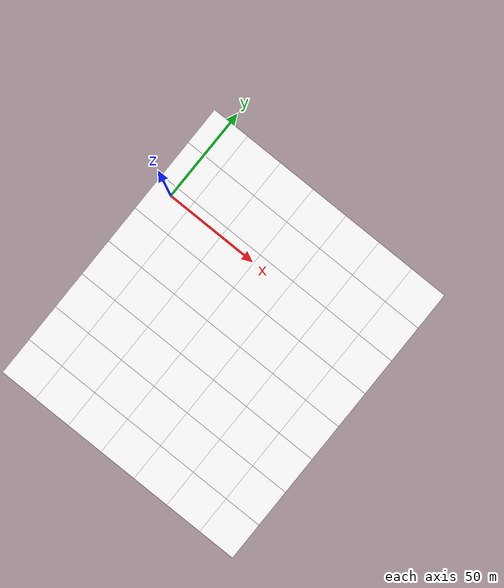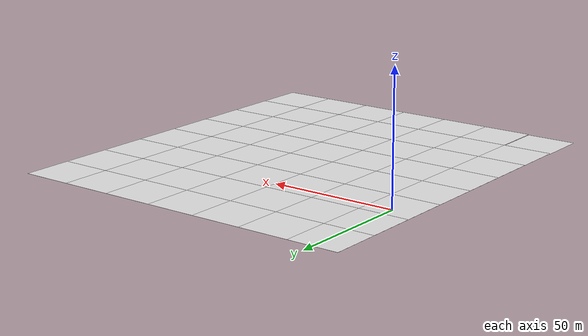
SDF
<sdf version="1.9">
 <world name="map">
  <physics type="ode">
   <ode>
    <solver>
     <type>quick</type>
     <iters>200</iters>
     <sor>1.3</sor>
     <use_dynamic_moi_rescaling>0</use_dynamic_moi_rescaling>
    </solver>
    <constraints>
     <cfm>0</cfm>
     <erp>0.2</erp>
     <contact_max_correcting_vel>100</contact_max_correcting_vel>
     <contact_surface_layer>0.001</contact_surface_layer>
    </constraints>
   </ode>
   <max_step_size>0.001</max_step_size>
   <real_time_factor>1</real_time_factor>
  </physics>
  <gravity>0 0 -9.8</gravity>
  <magnetic_field>6e-06 2.3e-05 -4.2e-05</magnetic_field>
  <atmosphere type="adiabatic"/>
  <plugin filename="gz-sim-physics-system" name="gz::sim::systems::Physics"/>
  <plugin filename="gz-sim-sensors-system" name="gz::sim::systems::Sensors">
   <render_engine>ogre2</render_engine>
  </plugin>
  <plugin filename="gz-sim-user-commands-system" name="gz::sim::systems::UserCommands"/>
  <plugin filename="gz-sim-scene-broadcaster-system" name="gz::sim::systems::SceneBroadcaster"/>
  <plugin filename="gz-sim-air-pressure-system" name="gz::sim::systems::AirPressure"/>
  <plugin filename="gz-sim-air-speed-system" name="gz::sim::systems::AirSpeed"/>
  <plugin filename="gz-sim-altimeter-system" name="gz::sim::systems::Altimeter"/>
  <plugin filename="gz-sim-imu-system" name="gz::sim::systems::Imu"/>
  <plugin filename="gz-sim-magnetometer-system" name="gz::sim::systems::Magnetometer"/>
  <plugin filename="gz-sim-navsat-system" name="gz::sim::systems::NavSat"/>
  <scene><ambient>1.0 1.0 1.0</ambient><background>1.0 1.0 1.0</background></scene>
  <light type="directional" name="sun">
   <pose>0 0 10 0 0 0</pose>
   <diffuse>0.8 0.8 0.8 1</diffuse>
   <specular>0.8 0.8 0.8 1</specular>
   <attenuation>
    <range>1000</range>
    <constant>0.9</constant>
    <linear>0.1</linear>
    <quadratic>0.001</quadratic>
   </attenuation>
   <direction>-0.5 0.1 -0.9</direction>
  </light>
  <spherical_coordinates>
   <surface_model>EARTH_WGS84</surface_model>
   <latitude_deg>37.28</latitude_deg>
   <longitude_deg>127.04</longitude_deg>
   <elevation>500</elevation>
   <heading_deg>0</heading_deg>
  </spherical_coordinates>
  <model name="grass_plane_0">
   <static>1</static>
   <link name="link">
    <collision name="collision">
     <geometry><plane><normal>0 0 1</normal><size>500 500</size></plane></geometry>
     <surface><friction><ode><mu>0.5</mu><mu2>0.5</mu2></ode></friction></surface>
    </collision>
    <visual name="visual_17">
     <pose>40 0 0 0 -0 0</pose>
     <cast_shadows>0</cast_shadows>
     <geometry><plane><normal>0 0 1</normal><size>20 20</size></plane></geometry>
     <material>
      <diffuse>1.0 1.0 1.0</diffuse>
      <specular>1.0 1.0 1.0</specular>
      <pbr>
       <metal>
        <albedo_map>model://grass_plane/materials/textures/grass_dry.png</albedo_map>
        <normal_map>model://grass_plane/materials/textures/grass_dry.png</normal_map>
       </metal>
      </pbr>
     </material>
    </visual>
    <visual name="visual_18">
     <pose>60 0 0 0 -0 0</pose>
     <cast_shadows>0</cast_shadows>
     <geometry><plane><normal>0 0 1</normal><size>20 20</size></plane></geometry>
     <material>
      <diffuse>1.0 1.0 1.0</diffuse>
      <specular>1.0 1.0 1.0</specular>
      <pbr>
       <metal>
        <albedo_map>model://grass_plane/materials/textures/grass_dry.png</albedo_map>
        <normal_map>model://grass_plane/materials/textures/grass_dry.png</normal_map>
       </metal>
      </pbr>
     </material>
    </visual>
    <visual name="visual_19">
     <pose>80 0 0 0 -0 0</pose>
     <cast_shadows>0</cast_shadows>
     <geometry><plane><normal>0 0 1</normal><size>20 20</size></plane></geometry>
     <material>
      <diffuse>1.0 1.0 1.0</diffuse>
      <specular>1.0 1.0 1.0</specular>
      <pbr>
       <metal>
        <albedo_map>model://grass_plane/materials/textures/grass_dry.png</albedo_map>
        <normal_map>model://grass_plane/materials/textures/grass_dry.png</normal_map>
       </metal>
      </pbr>
     </material>
    </visual>
    <visual name="visual_20">
     <pose>100 0 0 0 -0 0</pose>
     <cast_shadows>0</cast_shadows>
     <geometry><plane><normal>0 0 1</normal><size>20 20</size></plane></geometry>
     <material>
      <diffuse>1.0 1.0 1.0</diffuse>
      <specular>1.0 1.0 1.0</specular>
      <pbr>
       <metal>
        <albedo_map>model://grass_plane/materials/textures/grass_dry.png</albedo_map>
        <normal_map>model://grass_plane/materials/textures/grass_dry.png</normal_map>
       </metal>
      </pbr>
     </material>
    </visual>
    <visual name="visual_21">
     <pose>120 0 0 0 -0 0</pose>
     <cast_shadows>0</cast_shadows>
     <geometry><plane><normal>0 0 1</normal><size>20 20</size></plane></geometry>
     <material>
      <diffuse>1.0 1.0 1.0</diffuse>
      <specular>1.0 1.0 1.0</specular>
      <pbr>
       <metal>
        <albedo_map>model://grass_plane/materials/textures/grass_dry.png</albedo_map>
        <normal_map>model://grass_plane/materials/textures/grass_dry.png</normal_map>
       </metal>
      </pbr>
     </material>
    </visual>
    <visual name="visual_22">
     <pose>140 0 0 0 -0 0</pose>
     <cast_shadows>0</cast_shadows>
     <geometry><plane><normal>0 0 1</normal><size>20 20</size></plane></geometry>
     <material>
      <diffuse>1.0 1.0 1.0</diffuse>
      <specular>1.0 1.0 1.0</specular>
      <pbr>
       <metal>
        <albedo_map>model://grass_plane/materials/textures/grass_dry.png</albedo_map>
        <normal_map>model://grass_plane/materials/textures/grass_dry.png</normal_map>
       </metal>
      </pbr>
     </material>
    </visual>
    <visual name="visual_23">
     <pose>160 0 0 0 -0 0</pose>
     <cast_shadows>0</cast_shadows>
     <geometry><plane><normal>0 0 1</normal><size>20 20</size></plane></geometry>
     <material>
      <diffuse>1.0 1.0 1.0</diffuse>
      <specular>1.0 1.0 1.0</specular>
      <pbr>
       <metal>
        <albedo_map>model://grass_plane/materials/textures/grass_dry.png</albedo_map>
        <normal_map>model://grass_plane/materials/textures/grass_dry.png</normal_map>
       </metal>
      </pbr>
     </material>
    </visual>
    <visual name="visual_26">
     <pose>40 20 0 0 -0 0</pose>
     <cast_shadows>0</cast_shadows>
     <geometry><plane><normal>0 0 1</normal><size>20 20</size></plane></geometry>
     <material>
      <diffuse>1.0 1.0 1.0</diffuse>
      <specular>1.0 1.0 1.0</specular>
      <pbr>
       <metal>
        <albedo_map>model://grass_plane/materials/textures/grass_dry.png</albedo_map>
        <normal_map>model://grass_plane/materials/textures/grass_dry.png</normal_map>
       </metal>
      </pbr>
     </material>
    </visual>
    <visual name="visual_27">
     <pose>60 20 0 0 -0 0</pose>
     <cast_shadows>0</cast_shadows>
     <geometry><plane><normal>0 0 1</normal><size>20 20</size></plane></geometry>
     <material>
      <diffuse>1.0 1.0 1.0</diffuse>
      <specular>1.0 1.0 1.0</specular>
      <pbr>
       <metal>
        <albedo_map>model://grass_plane/materials/textures/grass_dry.png</albedo_map>
        <normal_map>model://grass_plane/materials/textures/grass_dry.png</normal_map>
       </metal>
      </pbr>
     </material>
    </visual>
    <visual name="visual_28">
     <pose>80 20 0 0 -0 0</pose>
     <cast_shadows>0</cast_shadows>
     <geometry><plane><normal>0 0 1</normal><size>20 20</size></plane></geometry>
     <material>
      <diffuse>1.0 1.0 1.0</diffuse>
      <specular>1.0 1.0 1.0</specular>
      <pbr>
       <metal>
        <albedo_map>model://grass_plane/materials/textures/grass_dry.png</albedo_map>
        <normal_map>model://grass_plane/materials/textures/grass_dry.png</normal_map>
       </metal>
      </pbr>
     </material>
    </visual>
    <visual name="visual_29">
     <pose>100 20 0 0 -0 0</pose>
     <cast_shadows>0</cast_shadows>
     <geometry><plane><normal>0 0 1</normal><size>20 20</size></plane></geometry>
     <material>
      <diffuse>1.0 1.0 1.0</diffuse>
      <specular>1.0 1.0 1.0</specular>
      <pbr>
       <metal>
        <albedo_map>model://grass_plane/materials/textures/grass_dry.png</albedo_map>
        <normal_map>model://grass_plane/materials/textures/grass_dry.png</normal_map>
       </metal>
      </pbr>
     </material>
    </visual>
    <visual name="visual_30">
     <pose>120 20 0 0 -0 0</pose>
     <cast_shadows>0</cast_shadows>
     <geometry><plane><normal>0 0 1</normal><size>20 20</size></plane></geometry>
     <material>
      <diffuse>1.0 1.0 1.0</diffuse>
      <specular>1.0 1.0 1.0</specular>
      <pbr>
       <metal>
        <albedo_map>model://grass_plane/materials/textures/grass_dry.png</albedo_map>
        <normal_map>model://grass_plane/materials/textures/grass_dry.png</normal_map>
       </metal>
      </pbr>
     </material>
    </visual>
    <visual name="visual_31">
     <pose>140 20 0 0 -0 0</pose>
     <cast_shadows>0</cast_shadows>
     <geometry><plane><normal>0 0 1</normal><size>20 20</size></plane></geometry>
     <material>
      <diffuse>1.0 1.0 1.0</diffuse>
      <specular>1.0 1.0 1.0</specular>
      <pbr>
       <metal>
        <albedo_map>model://grass_plane/materials/textures/grass_dry.png</albedo_map>
        <normal_map>model://grass_plane/materials/textures/grass_dry.png</normal_map>
       </metal>
      </pbr>
     </material>
    </visual>
    <visual name="visual_31a">
     <pose>160 20 0 0 -0 0</pose>
     <cast_shadows>0</cast_shadows>
     <geometry><plane><normal>0 0 1</normal><size>20 20</size></plane></geometry>
     <material>
      <diffuse>1.0 1.0 1.0</diffuse>
      <specular>1.0 1.0 1.0</specular>
      <pbr>
       <metal>
        <albedo_map>model://grass_plane/materials/textures/grass_dry.png</albedo_map>
        <normal_map>model://grass_plane/materials/textures/grass_dry.png</normal_map>
       </metal>
      </pbr>
     </material>
    </visual>
    <visual name="visual_32">
     <pose>40 40 0 0 -0 0</pose>
     <cast_shadows>0</cast_shadows>
     <geometry><plane><normal>0 0 1</normal><size>20 20</size></plane></geometry>
     <material>
      <diffuse>1.0 1.0 1.0</diffuse>
      <specular>1.0 1.0 1.0</specular>
      <pbr>
       <metal>
        <albedo_map>model://grass_plane/materials/textures/grass_dry.png</albedo_map>
        <normal_map>model://grass_plane/materials/textures/grass_dry.png</normal_map>
       </metal>
      </pbr>
     </material>
    </visual>
    <visual name="visual_33">
     <pose>60 40 0 0 -0 0</pose>
     <cast_shadows>0</cast_shadows>
     <geometry><plane><normal>0 0 1</normal><size>20 20</size></plane></geometry>
     <material>
      <diffuse>1.0 1.0 1.0</diffuse>
      <specular>1.0 1.0 1.0</specular>
      <pbr>
       <metal>
        <albedo_map>model://grass_plane/materials/textures/grass_dry.png</albedo_map>
        <normal_map>model://grass_plane/materials/textures/grass_dry.png</normal_map>
       </metal>
      </pbr>
     </material>
    </visual>
    <visual name="visual_34">
     <pose>80 40 0 0 -0 0</pose>
     <cast_shadows>0</cast_shadows>
     <geometry><plane><normal>0 0 1</normal><size>20 20</size></plane></geometry>
     <material>
      <diffuse>1.0 1.0 1.0</diffuse>
      <specular>1.0 1.0 1.0</specular>
      <pbr>
       <metal>
        <albedo_map>model://grass_plane/materials/textures/grass_dry.png</albedo_map>
        <normal_map>model://grass_plane/materials/textures/grass_dry.png</normal_map>
       </metal>
      </pbr>
     </material>
    </visual>
    <visual name="visual_35">
     <pose>100 40 0 0 -0 0</pose>
     <cast_shadows>0</cast_shadows>
     <geometry><plane><normal>0 0 1</normal><size>20 20</size></plane></geometry>
     <material>
      <diffuse>1.0 1.0 1.0</diffuse>
      <specular>1.0 1.0 1.0</specular>
      <pbr>
       <metal>
        <albedo_map>model://grass_plane/materials/textures/grass_dry.png</albedo_map>
        <normal_map>model://grass_plane/materials/textures/grass_dry.png</normal_map>
       </metal>
      </pbr>
     </material>
    </visual>
    <visual name="visual_36">
     <pose>120 40 0 0 -0 0</pose>
     <cast_shadows>0</cast_shadows>
     <geometry><plane><normal>0 0 1</normal><size>20 20</size></plane></geometry>
     <material>
      <diffuse>1.0 1.0 1.0</diffuse>
      <specular>1.0 1.0 1.0</specular>
      <pbr>
       <metal>
        <albedo_map>model://grass_plane/materials/textures/grass_dry.png</albedo_map>
        <normal_map>model://grass_plane/materials/textures/grass_dry.png</normal_map>
       </metal>
      </pbr>
     </material>
    </visual>
    <visual name="visual_37">
     <pose>140 40 0 0 -0 0</pose>
     <cast_shadows>0</cast_shadows>
     <geometry><plane><normal>0 0 1</normal><size>20 20</size></plane></geometry>
     <material>
      <diffuse>1.0 1.0 1.0</diffuse>
      <specular>1.0 1.0 1.0</specular>
      <pbr>
       <metal>
        <albedo_map>model://grass_plane/materials/textures/grass_dry.png</albedo_map>
        <normal_map>model://grass_plane/materials/textures/grass_dry.png</normal_map>
       </metal>
      </pbr>
     </material>
    </visual>
    <visual name="visual_38">
     <pose>160 40 0 0 -0 0</pose>
     <cast_shadows>0</cast_shadows>
     <geometry><plane><normal>0 0 1</normal><size>20 20</size></plane></geometry>
     <material>
      <diffuse>1.0 1.0 1.0</diffuse>
      <specular>1.0 1.0 1.0</specular>
      <pbr>
       <metal>
        <albedo_map>model://grass_plane/materials/textures/grass_dry.png</albedo_map>
        <normal_map>model://grass_plane/materials/textures/grass_dry.png</normal_map>
       </metal>
      </pbr>
     </material>
    </visual>
    <visual name="visual_39">
     <pose>40 60 0 0 -0 0</pose>
     <cast_shadows>0</cast_shadows>
     <geometry><plane><normal>0 0 1</normal><size>20 20</size></plane></geometry>
     <material>
      <diffuse>1.0 1.0 1.0</diffuse>
      <specular>1.0 1.0 1.0</specular>
      <pbr>
       <metal>
        <albedo_map>model://grass_plane/materials/textures/grass_dry.png</albedo_map>
        <normal_map>model://grass_plane/materials/textures/grass_dry.png</normal_map>
       </metal>
      </pbr>
     </material>
    </visual>
    <visual name="visual_40">
     <pose>60 60 0 0 -0 0</pose>
     <cast_shadows>0</cast_shadows>
     <geometry><plane><normal>0 0 1</normal><size>20 20</size></plane></geometry>
     <material>
      <diffuse>1.0 1.0 1.0</diffuse>
      <specular>1.0 1.0 1.0</specular>
      <pbr>
       <metal>
        <albedo_map>model://grass_plane/materials/textures/grass_dry.png</albedo_map>
        <normal_map>model://grass_plane/materials/textures/grass_dry.png</normal_map>
       </metal>
      </pbr>
     </material>
    </visual>
    <visual name="visual_41">
     <pose>80 60 0 0 -0 0</pose>
     <cast_shadows>0</cast_shadows>
     <geometry><plane><normal>0 0 1</normal><size>20 20</size></plane></geometry>
     <material>
      <diffuse>1.0 1.0 1.0</diffuse>
      <specular>1.0 1.0 1.0</specular>
      <pbr>
       <metal>
        <albedo_map>model://grass_plane/materials/textures/grass_dry.png</albedo_map>
        <normal_map>model://grass_plane/materials/textures/grass_dry.png</normal_map>
       </metal>
      </pbr>
     </material>
    </visual>
    <visual name="visual_42">
     <pose>100 60 0 0 -0 0</pose>
     <cast_shadows>0</cast_shadows>
     <geometry><plane><normal>0 0 1</normal><size>20 20</size></plane></geometry>
     <material>
      <diffuse>1.0 1.0 1.0</diffuse>
      <specular>1.0 1.0 1.0</specular>
      <pbr>
       <metal>
        <albedo_map>model://grass_plane/materials/textures/grass_dry.png</albedo_map>
        <normal_map>model://grass_plane/materials/textures/grass_dry.png</normal_map>
       </metal>
      </pbr>
     </material>
    </visual>
    <visual name="visual_43">
     <pose>120 60 0 0 -0 0</pose>
     <cast_shadows>0</cast_shadows>
     <geometry><plane><normal>0 0 1</normal><size>20 20</size></plane></geometry>
     <material>
      <diffuse>1.0 1.0 1.0</diffuse>
      <specular>1.0 1.0 1.0</specular>
      <pbr>
       <metal>
        <albedo_map>model://grass_plane/materials/textures/grass_dry.png</albedo_map>
        <normal_map>model://grass_plane/materials/textures/grass_dry.png</normal_map>
       </metal>
      </pbr>
     </material>
    </visual>
    <visual name="visual_44">
     <pose>140 60 0 0 -0 0</pose>
     <cast_shadows>0</cast_shadows>
     <geometry><plane><normal>0 0 1</normal><size>20 20</size></plane></geometry>
     <material>
      <diffuse>1.0 1.0 1.0</diffuse>
      <specular>1.0 1.0 1.0</specular>
      <pbr>
       <metal>
        <albedo_map>model://grass_plane/materials/textures/grass_dry.png</albedo_map>
        <normal_map>model://grass_plane/materials/textures/grass_dry.png</normal_map>
       </metal>
      </pbr>
     </material>
    </visual>
    <visual name="visual_45">
     <pose>160 60 0 0 -0 0</pose>
     <cast_shadows>0</cast_shadows>
     <geometry><plane><normal>0 0 1</normal><size>20 20</size></plane></geometry>
     <material>
      <diffuse>1.0 1.0 1.0</diffuse>
      <specular>1.0 1.0 1.0</specular>
      <pbr>
       <metal>
        <albedo_map>model://grass_plane/materials/textures/grass_dry.png</albedo_map>
        <normal_map>model://grass_plane/materials/textures/grass_dry.png</normal_map>
       </metal>
      </pbr>
     </material>
    </visual>
    <visual name="visual_46">
     <pose>40 80 0 0 -0 0</pose>
     <cast_shadows>0</cast_shadows>
     <geometry><plane><normal>0 0 1</normal><size>20 20</size></plane></geometry>
     <material>
      <diffuse>1.0 1.0 1.0</diffuse>
      <specular>1.0 1.0 1.0</specular>
      <pbr>
       <metal>
        <albedo_map>model://grass_plane/materials/textures/grass_dry.png</albedo_map>
        <normal_map>model://grass_plane/materials/textures/grass_dry.png</normal_map>
       </metal>
      </pbr>
     </material>
    </visual>
    <visual name="visual_47">
     <pose>60 80 0 0 -0 0</pose>
     <cast_shadows>0</cast_shadows>
     <geometry><plane><normal>0 0 1</normal><size>20 20</size></plane></geometry>
     <material>
      <diffuse>1.0 1.0 1.0</diffuse>
      <specular>1.0 1.0 1.0</specular>
      <pbr>
       <metal>
        <albedo_map>model://grass_plane/materials/textures/grass_dry.png</albedo_map>
        <normal_map>model://grass_plane/materials/textures/grass_dry.png</normal_map>
       </metal>
      </pbr>
     </material>
    </visual>
    <visual name="visual_48">
     <pose>80 80 0 0 -0 0</pose>
     <cast_shadows>0</cast_shadows>
     <geometry><plane><normal>0 0 1</normal><size>20 20</size></plane></geometry>
     <material>
      <diffuse>1.0 1.0 1.0</diffuse>
      <specular>1.0 1.0 1.0</specular>
      <pbr>
       <metal>
        <albedo_map>model://grass_plane/materials/textures/grass_dry.png</albedo_map>
        <normal_map>model://grass_plane/materials/textures/grass_dry.png</normal_map>
       </metal>
      </pbr>
     </material>
    </visual>
    <visual name="visual_49">
     <pose>100 80 0 0 -0 0</pose>
     <cast_shadows>0</cast_shadows>
     <geometry><plane><normal>0 0 1</normal><size>20 20</size></plane></geometry>
     <material>
      <diffuse>1.0 1.0 1.0</diffuse>
      <specular>1.0 1.0 1.0</specular>
      <pbr>
       <metal>
        <albedo_map>model://grass_plane/materials/textures/grass_dry.png</albedo_map>
        <normal_map>model://grass_plane/materials/textures/grass_dry.png</normal_map>
       </metal>
      </pbr>
     </material>
    </visual>
    <visual name="visual_50">
     <pose>120 80 0 0 -0 0</pose>
     <cast_shadows>0</cast_shadows>
     <geometry><plane><normal>0 0 1</normal><size>20 20</size></plane></geometry>
     <material>
      <diffuse>1.0 1.0 1.0</diffuse>
      <specular>1.0 1.0 1.0</specular>
      <pbr>
       <metal>
        <albedo_map>model://grass_plane/materials/textures/grass_dry.png</albedo_map>
        <normal_map>model://grass_plane/materials/textures/grass_dry.png</normal_map>
       </metal>
      </pbr>
     </material>
    </visual>
    <visual name="visual_51">
     <pose>140 80 0 0 -0 0</pose>
     <cast_shadows>0</cast_shadows>
     <geometry><plane><normal>0 0 1</normal><size>20 20</size></plane></geometry>
     <material>
      <diffuse>1.0 1.0 1.0</diffuse>
      <specular>1.0 1.0 1.0</specular>
      <pbr>
       <metal>
        <albedo_map>model://grass_plane/materials/textures/grass_dry.png</albedo_map>
        <normal_map>model://grass_plane/materials/textures/grass_dry.png</normal_map>
       </metal>
      </pbr>
     </material>
    </visual>
    <visual name="visual_52">
     <pose>160 80 0 0 -0 0</pose>
     <cast_shadows>0</cast_shadows>
     <geometry><plane><normal>0 0 1</normal><size>20 20</size></plane></geometry>
     <material>
      <diffuse>1.0 1.0 1.0</diffuse>
      <specular>1.0 1.0 1.0</specular>
      <pbr>
       <metal>
        <albedo_map>model://grass_plane/materials/textures/grass_dry.png</albedo_map>
        <normal_map>model://grass_plane/materials/textures/grass_dry.png</normal_map>
       </metal>
      </pbr>
     </material>
    </visual>
    <visual name="visual_55">
     <pose>40 100 0 0 -0 0</pose>
     <cast_shadows>0</cast_shadows>
     <geometry><plane><normal>0 0 1</normal><size>20 20</size></plane></geometry>
     <material>
      <diffuse>1.0 1.0 1.0</diffuse>
      <specular>1.0 1.0 1.0</specular>
      <pbr>
       <metal>
        <albedo_map>model://grass_plane/materials/textures/grass_dry.png</albedo_map>
        <normal_map>model://grass_plane/materials/textures/grass_dry.png</normal_map>
       </metal>
      </pbr>
     </material>
    </visual>
    <visual name="visual_56">
     <pose>60 100 0 0 -0 0</pose>
     <cast_shadows>0</cast_shadows>
     <geometry><plane><normal>0 0 1</normal><size>20 20</size></plane></geometry>
     <material>
      <diffuse>1.0 1.0 1.0</diffuse>
      <specular>1.0 1.0 1.0</specular>
      <pbr>
       <metal>
        <albedo_map>model://grass_plane/materials/textures/grass_dry.png</albedo_map>
        <normal_map>model://grass_plane/materials/textures/grass_dry.png</normal_map>
       </metal>
      </pbr>
     </material>
    </visual>
    <visual name="visual_57">
     <pose>80 100 0 0 -0 0</pose>
     <cast_shadows>0</cast_shadows>
     <geometry><plane><normal>0 0 1</normal><size>20 20</size></plane></geometry>
     <material>
      <diffuse>1.0 1.0 1.0</diffuse>
      <specular>1.0 1.0 1.0</specular>
      <pbr>
       <metal>
        <albedo_map>model://grass_plane/materials/textures/grass_dry.png</albedo_map>
        <normal_map>model://grass_plane/materials/textures/grass_dry.png</normal_map>
       </metal>
      </pbr>
     </material>
    </visual>
    <visual name="visual_58">
     <pose>100 100 0 0 -0 0</pose>
     <cast_shadows>0</cast_shadows>
     <geometry><plane><normal>0 0 1</normal><size>20 20</size></plane></geometry>
     <material>
      <diffuse>1.0 1.0 1.0</diffuse>
      <specular>1.0 1.0 1.0</specular>
      <pbr>
       <metal>
        <albedo_map>model://grass_plane/materials/textures/grass_dry.png</albedo_map>
        <normal_map>model://grass_plane/materials/textures/grass_dry.png</normal_map>
       </metal>
      </pbr>
     </material>
    </visual>
    <visual name="visual_59">
     <pose>120 100 0 0 -0 0</pose>
     <cast_shadows>0</cast_shadows>
     <geometry><plane><normal>0 0 1</normal><size>20 20</size></plane></geometry>
     <material>
      <diffuse>1.0 1.0 1.0</diffuse>
      <specular>1.0 1.0 1.0</specular>
      <pbr>
       <metal>
        <albedo_map>model://grass_plane/materials/textures/grass_dry.png</albedo_map>
        <normal_map>model://grass_plane/materials/textures/grass_dry.png</normal_map>
       </metal>
      </pbr>
     </material>
    </visual>
    <visual name="visual_60">
     <pose>140 100 0 0 -0 0</pose>
     <cast_shadows>0</cast_shadows>
     <geometry><plane><normal>0 0 1</normal><size>20 20</size></plane></geometry>
     <material>
      <diffuse>1.0 1.0 1.0</diffuse>
      <specular>1.0 1.0 1.0</specular>
      <pbr>
       <metal>
        <albedo_map>model://grass_plane/materials/textures/grass_dry.png</albedo_map>
        <normal_map>model://grass_plane/materials/textures/grass_dry.png</normal_map>
       </metal>
      </pbr>
     </material>
    </visual>
    <visual name="visual_61">
     <pose>160 100 0 0 -0 0</pose>
     <cast_shadows>0</cast_shadows>
     <geometry><plane><normal>0 0 1</normal><size>20 20</size></plane></geometry>
     <material>
      <diffuse>1.0 1.0 1.0</diffuse>
      <specular>1.0 1.0 1.0</specular>
      <pbr>
       <metal>
        <albedo_map>model://grass_plane/materials/textures/grass_dry.png</albedo_map>
        <normal_map>model://grass_plane/materials/textures/grass_dry.png</normal_map>
       </metal>
      </pbr>
     </material>
    </visual>
    <visual name="visual_64">
     <pose>40 120 0 0 -0 0</pose>
     <cast_shadows>0</cast_shadows>
     <geometry><plane><normal>0 0 1</normal><size>20 20</size></plane></geometry>
     <material>
      <diffuse>1.0 1.0 1.0</diffuse>
      <specular>1.0 1.0 1.0</specular>
      <pbr>
       <metal>
        <albedo_map>model://grass_plane/materials/textures/grass_dry.png</albedo_map>
        <normal_map>model://grass_plane/materials/textures/grass_dry.png</normal_map>
       </metal>
      </pbr>
     </material>
    </visual>
    <visual name="visual_65">
     <pose>60 120 0 0 -0 0</pose>
     <cast_shadows>0</cast_shadows>
     <geometry><plane><normal>0 0 1</normal><size>20 20</size></plane></geometry>
     <material>
      <diffuse>1.0 1.0 1.0</diffuse>
      <specular>1.0 1.0 1.0</specular>
      <pbr>
       <metal>
        <albedo_map>model://grass_plane/materials/textures/grass_dry.png</albedo_map>
        <normal_map>model://grass_plane/materials/textures/grass_dry.png</normal_map>
       </metal>
      </pbr>
     </material>
    </visual>
    <visual name="visual_66">
     <pose>80 120 0 0 -0 0</pose>
     <cast_shadows>0</cast_shadows>
     <geometry><plane><normal>0 0 1</normal><size>20 20</size></plane></geometry>
     <material>
      <diffuse>1.0 1.0 1.0</diffuse>
      <specular>1.0 1.0 1.0</specular>
      <pbr>
       <metal>
        <albedo_map>model://grass_plane/materials/textures/grass_dry.png</albedo_map>
        <normal_map>model://grass_plane/materials/textures/grass_dry.png</normal_map>
       </metal>
      </pbr>
     </material>
    </visual>
    <visual name="visual_67">
     <pose>100 120 0 0 -0 0</pose>
     <cast_shadows>0</cast_shadows>
     <geometry><plane><normal>0 0 1</normal><size>20 20</size></plane></geometry>
     <material>
      <diffuse>1.0 1.0 1.0</diffuse>
      <specular>1.0 1.0 1.0</specular>
      <pbr>
       <metal>
        <albedo_map>model://grass_plane/materials/textures/grass_dry.png</albedo_map>
        <normal_map>model://grass_plane/materials/textures/grass_dry.png</normal_map>
       </metal>
      </pbr>
     </material>
    </visual>
    <visual name="visual_68">
     <pose>120 120 0 0 -0 0</pose>
     <cast_shadows>0</cast_shadows>
     <geometry><plane><normal>0 0 1</normal><size>20 20</size></plane></geometry>
     <material>
      <diffuse>1.0 1.0 1.0</diffuse>
      <specular>1.0 1.0 1.0</specular>
      <pbr>
       <metal>
        <albedo_map>model://grass_plane/materials/textures/grass_dry.png</albedo_map>
        <normal_map>model://grass_plane/materials/textures/grass_dry.png</normal_map>
       </metal>
      </pbr>
     </material>
    </visual>
    <visual name="visual_69">
     <pose>140 120 0 0 -0 0</pose>
     <cast_shadows>0</cast_shadows>
     <geometry><plane><normal>0 0 1</normal><size>20 20</size></plane></geometry>
     <material>
      <diffuse>1.0 1.0 1.0</diffuse>
      <specular>1.0 1.0 1.0</specular>
      <pbr>
       <metal>
        <albedo_map>model://grass_plane/materials/textures/grass_dry.png</albedo_map>
        <normal_map>model://grass_plane/materials/textures/grass_dry.png</normal_map>
       </metal>
      </pbr>
     </material>
    </visual>
    <visual name="visual_70">
     <pose>160 120 0 0 -0 0</pose>
     <cast_shadows>0</cast_shadows>
     <geometry><plane><normal>0 0 1</normal><size>20 20</size></plane></geometry>
     <material>
      <diffuse>1.0 1.0 1.0</diffuse>
      <specular>1.0 1.0 1.0</specular>
      <pbr>
       <metal>
        <albedo_map>model://grass_plane/materials/textures/grass_dry.png</albedo_map>
        <normal_map>model://grass_plane/materials/textures/grass_dry.png</normal_map>
       </metal>
      </pbr>
     </material>
    </visual>
    <visual name="visual_73">
     <pose>40 140 0 0 -0 0</pose>
     <cast_shadows>0</cast_shadows>
     <geometry><plane><normal>0 0 1</normal><size>20 20</size></plane></geometry>
     <material>
      <diffuse>1.0 1.0 1.0</diffuse>
      <specular>1.0 1.0 1.0</specular>
      <pbr>
       <metal>
        <albedo_map>model://grass_plane/materials/textures/grass_dry.png</albedo_map>
        <normal_map>model://grass_plane/materials/textures/grass_dry.png</normal_map>
       </metal>
      </pbr>
     </material>
    </visual>
    <visual name="visual_74">
     <pose>60 140 0 0 -0 0</pose>
     <cast_shadows>0</cast_shadows>
     <geometry><plane><normal>0 0 1</normal><size>20 20</size></plane></geometry>
     <material>
      <diffuse>1.0 1.0 1.0</diffuse>
      <specular>1.0 1.0 1.0</specular>
      <pbr>
       <metal>
        <albedo_map>model://grass_plane/materials/textures/grass_dry.png</albedo_map>
        <normal_map>model://grass_plane/materials/textures/grass_dry.png</normal_map>
       </metal>
      </pbr>
     </material>
    </visual>
    <visual name="visual_75">
     <pose>80 140 0 0 -0 0</pose>
     <cast_shadows>0</cast_shadows>
     <geometry><plane><normal>0 0 1</normal><size>20 20</size></plane></geometry>
     <material>
      <diffuse>1.0 1.0 1.0</diffuse>
      <specular>1.0 1.0 1.0</specular>
      <pbr>
       <metal>
        <albedo_map>model://grass_plane/materials/textures/grass_dry.png</albedo_map>
        <normal_map>model://grass_plane/materials/textures/grass_dry.png</normal_map>
       </metal>
      </pbr>
     </material>
    </visual>
    <visual name="visual_76">
     <pose>100 140 0 0 -0 0</pose>
     <cast_shadows>0</cast_shadows>
     <geometry><plane><normal>0 0 1</normal><size>20 20</size></plane></geometry>
     <material>
      <diffuse>1.0 1.0 1.0</diffuse>
      <specular>1.0 1.0 1.0</specular>
      <pbr>
       <metal>
        <albedo_map>model://grass_plane/materials/textures/grass_dry.png</albedo_map>
        <normal_map>model://grass_plane/materials/textures/grass_dry.png</normal_map>
       </metal>
      </pbr>
     </material>
    </visual>
    <visual name="visual_77">
     <pose>120 140 0 0 -0 0</pose>
     <cast_shadows>0</cast_shadows>
     <geometry><plane><normal>0 0 1</normal><size>20 20</size></plane></geometry>
     <material>
      <diffuse>1.0 1.0 1.0</diffuse>
      <specular>1.0 1.0 1.0</specular>
      <pbr>
       <metal>
        <albedo_map>model://grass_plane/materials/textures/grass_dry.png</albedo_map>
        <normal_map>model://grass_plane/materials/textures/grass_dry.png</normal_map>
       </metal>
      </pbr>
     </material>
    </visual>
    <visual name="visual_78">
     <pose>140 140 0 0 -0 0</pose>
     <cast_shadows>0</cast_shadows>
     <geometry><plane><normal>0 0 1</normal><size>20 20</size></plane></geometry>
     <material>
      <diffuse>1.0 1.0 1.0</diffuse>
      <specular>1.0 1.0 1.0</specular>
      <pbr>
       <metal>
        <albedo_map>model://grass_plane/materials/textures/grass_dry.png</albedo_map>
        <normal_map>model://grass_plane/materials/textures/grass_dry.png</normal_map>
       </metal>
      </pbr>
     </material>
    </visual>
    <visual name="visual_79">
     <pose>160 140 0 0 -0 0</pose>
     <cast_shadows>0</cast_shadows>
     <geometry><plane><normal>0 0 1</normal><size>20 20</size></plane></geometry>
     <material>
      <diffuse>1.0 1.0 1.0</diffuse>
      <specular>1.0 1.0 1.0</specular>
      <pbr>
       <metal>
        <albedo_map>model://grass_plane/materials/textures/grass_dry.png</albedo_map>
        <normal_map>model://grass_plane/materials/textures/grass_dry.png</normal_map>
       </metal>
      </pbr>
     </material>
    </visual>
   </link>
   <pose>-39.6196 -105.125 0 0 -0 0</pose>
  </model>
  <audio><device>default</device></audio>
 </world>
</sdf>
